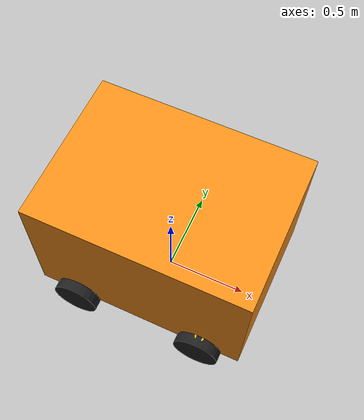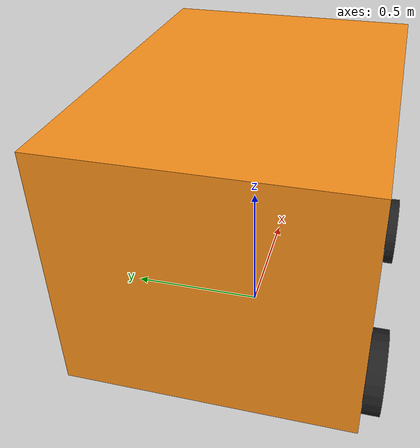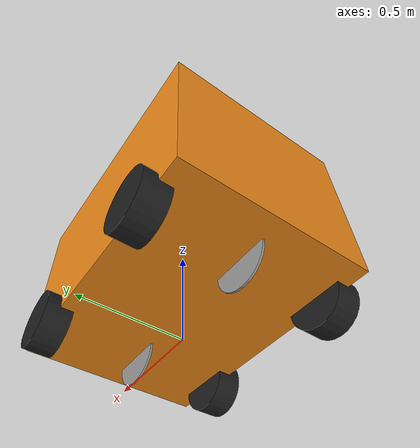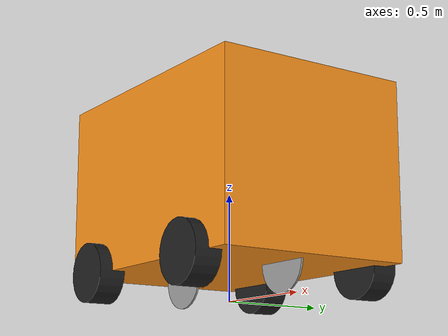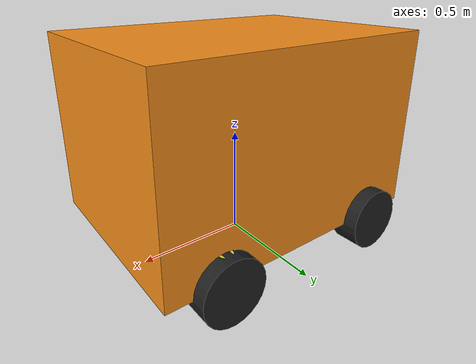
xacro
<?xml version="1.0"?>
<robot xmlns:xacro="http://www.ros.org/wiki/xacro" >
    <xacro:include filename="inertial_macros.xacro"/>
    <xacro:include filename="materials.xacro"/>

    <!-- Constants for robot dimensions -->
    <xacro:property name="PI" value="3.1415926535897931"/>
    <xacro:property name="base_mass" value="8.0" /> <!-- arbitrary value for base mass -->
    <xacro:property name="base_width" value="0.94" />
    <xacro:property name="base_length" value="1.3" />
    <xacro:property name="base_height" value="0.83" />
    <xacro:property name="wheelbase" value="0.8" />
    <xacro:property name="wheel_mass" value="0.34055" /> <!-- arbitrary value for wheel mass -->
    <xacro:property name="wheel_len" value="0.125" />
    <xacro:property name="wheel_radius" value="0.1397" />
    <xacro:property name="steer_mass" value="0.34055" /> <!-- arbitrary value for wheel mass -->
    <xacro:property name="steer_len" value="0.025" />
    <xacro:property name="steer_radius" value="0.03" />

    <!-- Base Link -->
    <link name="base_link" />
    <!-- BASE_FOOTPRINT LINK -->

    <joint name="base_footprint_joint" type="fixed">
        <parent link="base_link"/>
        <child link="base_footprint"/>
        <origin xyz="0 0 0" rpy="0 0 0"/>
    </joint>

    <link name="base_footprint">
    </link>

    <!-- Chassis -->

    <link name="chassis_link">
        <visual>
            <origin xyz="0 0 0" rpy="0 0 0"/>
            <geometry>
                <box size="${base_length} ${base_width} ${base_height}"/>
            </geometry>
            <material name="orange"/>
        </visual>
        <collision>
            <origin xyz="0 0 0" rpy="0 0 0"/>
            <geometry>
                <box size="${base_length} ${base_width} ${base_height}"/>
            </geometry>
        </collision>
        <inertial>
            <origin xyz="0 0 0" rpy="0 0 0"/>
            <mass value="${base_mass}"/>
            <inertia
                ixx="0.000270" ixy="0.0" ixz="0.0"
                iyy="0.000270" iyz="0.0"
                izz="0.000426"/>
        </inertial>
    </link>
    <gazebo reference="chassis_link">
        <material>Gazebo/Orange</material>
    </gazebo>

    <joint name="chassis_joint" type="fixed">
        <parent link="base_link"/>
        <child link="chassis_link"/>
        <origin xyz="0 0 ${base_height/2 + wheel_radius}" rpy="0 0 0"/>
        <axis xyz="0 0 1"/>
        <dynamics damping="0.2"/>
    </joint>

    <!-- rear wheels -->

    <!-- virtual rear wheel -->

    <link name="virtual_rear_wheel">
        <visual>
            <origin xyz="0 0 0" rpy="${PI/2} 0 ${PI/2}"/>
            <geometry>
                <cylinder length="0.01" radius="${wheel_radius}"/>
            </geometry>
            <material name="invisible"/>
        </visual>
        <collision>
            <origin xyz="0 0 0" rpy="${PI/2} 0 ${PI/2}"/>
            <geometry>
                <cylinder length="0.01" radius="${wheel_radius}"/>
            </geometry>
        </collision>
        <inertial>
            <origin xyz="0 0 0" rpy="${PI/2} 0 ${PI/2}"/>
            <mass value="${wheel_mass}"/>
            <inertia
                ixx="0.000270" ixy="0.0" ixz="0.0"
                iyy="0.000270" iyz="0.0"
                izz="0.000426"/>
        </inertial>
    </link>
    <gazebo reference="virtual_rear_wheel">
        <material>Gazebo/GreyTransparent</material>
    </gazebo>

    <joint name="virtual_rear_wheel_joint" type="continuous">
        <parent link="chassis_link"/>
        <child link="virtual_rear_wheel"/>
        <origin xyz="-${wheelbase/2} 0 -${base_height/2}" rpy="0 0 ${PI/2}"/>
        <axis xyz="1 0 0"/>
        <limit effort="100.0" velocity="100.0"/>
        <dynamics damping="0.2"/>
    </joint>

    <!-- rear right wheel -->

    <link name="rear_right_wheel">
        <visual>
            <origin xyz="0 0 0" rpy="${PI/2} 0 ${PI/2}"/>
            <geometry>
                <cylinder length="${wheel_len}" radius="${wheel_radius}"/>
            </geometry>
            <material name="black"/>
        </visual>
        <collision>
            <origin xyz="0 0 0" rpy="${PI/2} 0 ${PI/2}"/>
            <geometry>
                <cylinder length="${wheel_len}" radius="${wheel_radius}"/>
            </geometry>
        </collision>
        <inertial>
            <origin xyz="0 0 0" rpy="${PI/2} 0 ${PI/2}"/>
            <mass value="${wheel_mass}"/>
            <inertia
                ixx="0.000270" ixy="0.0" ixz="0.0"
                iyy="0.000270" iyz="0.0"
                izz="0.000426"/>
        </inertial>
    </link>
    <gazebo reference="rear_right_wheel">
        <material>Gazebo/Blue</material>
    </gazebo>

    <joint name="rear_right_wheel_joint" type="continuous">
        <parent link="chassis_link"/>
        <child link="rear_right_wheel"/>
        <origin xyz="-${wheelbase/2} ${base_width/2} -${base_height/2}" rpy="0 0 ${PI/2}"/>
        <axis xyz="1 0 0"/>
        <limit effort="100.0" velocity="100.0"/>
        <dynamics damping="0.2"/>
        <mimic joint="virtual_rear_wheel_joint" multiplier="1.0" offset="0.0"/>
    </joint>

    <!-- rear left wheel -->
    <link name="rear_left_wheel">
        <visual>
            <origin xyz="0 0 0" rpy="${PI/2} 0 ${PI/2}"/>
            <geometry>
                <cylinder length="${wheel_len}" radius="${wheel_radius}"/>
            </geometry>
            <material name="black"/>
        </visual>
        <collision>
            <origin xyz="0 0 0" rpy="${PI/2} 0 ${PI/2}"/>
            <geometry>
                <cylinder length="${wheel_len}" radius="${wheel_radius}"/>
            </geometry>
        </collision>
        <inertial>
            <origin xyz="0 0 0" rpy="${PI/2} 0 ${PI/2}"/>
            <mass value="${wheel_mass}"/>
            <inertia
            ixx="0.000270" ixy="0.0" ixz="0.0"
            iyy="0.000270" iyz="0.0"
            izz="0.000426"/>
        </inertial>
    </link>
    <gazebo reference="rear_left_wheel">
        <material>Gazebo/Blue</material>
    </gazebo>

    <joint name="rear_left_wheel_joint" type="continuous">
        <parent link="chassis_link" />
        <child link="rear_left_wheel" />
        <origin xyz="-${wheelbase/2} -${base_width/2} -${base_height/2}" rpy="0 0 ${PI/2}"/>
        <axis xyz="1 0 0"/>
        <limit effort="100.0" velocity="100.0"/>
        <dynamics damping="0.2"/>
        <mimic joint="virtual_rear_wheel_joint" multiplier="1.0" offset="0.0"/>
    </joint>

    <!-- front wheels -->

    <!-- virtual front wheel -->

    <link name="virtual_front_steer">
        <visual>
        <origin xyz="0 0 0" rpy="${PI/2} 0 ${PI/2}"/>
        <geometry>
            <cylinder length="0.01" radius="${wheel_radius}"/>
        </geometry>
        <material name="invisible"/>
        </visual>
        <collision>
                <origin xyz="0 0 0" rpy="${PI/2} 0 ${PI/2}"/>
                <geometry>
                    <cylinder length="0.01" radius="${wheel_radius}"/>
                </geometry>
        </collision>
        <inertial>
                <origin xyz="0 0 0" rpy="${PI/2} 0 ${PI/2}"/>
                <mass value="${wheel_mass}"/>
                <inertia
                    ixx="0.000270" ixy="0.0" ixz="0.0"
                    iyy="0.000270" iyz="0.0"
                    izz="0.000426"/>
        </inertial>
    </link>
    <gazebo reference="virtual_front_steer">
        <material>Gazebo/GreyTransparent</material>
    </gazebo>

    <joint name="virtual_front_steer_joint" type="revolute">
        <parent link="chassis_link"/>
        <child link="virtual_front_steer"/>
        <origin xyz="${wheelbase/2} 0 -${base_height/2}" rpy="0 0 ${PI/2}"/>
        <axis xyz="0 0 1"/>
        <limit lower="-0.4" upper="0.4" effort="100.0" velocity="0.0"/>
        <dynamics damping="0.2"/>
    </joint>

    <!-- front right wheel -->
    <link name="front_right_steer">
        <visual>
            <origin xyz="0 0 0" rpy="${PI/2} 0 ${PI/2}"/>
            <geometry>
                <cylinder length="${steer_len}" radius="${steer_radius}"/>
            </geometry>
            <material name="yellow"/>
        </visual>
        <collision>
            <origin xyz="0 0 0" rpy="${PI/2} 0 ${PI/2}"/>
            <geometry>
                <cylinder length="${steer_len}" radius="${steer_radius}"/>
            </geometry>
        </collision>
        <inertial>
            <origin xyz="0 0 0" rpy="${PI/2} 0 ${PI/2}"/>
            <mass value="${steer_mass}"/>
            <inertia
                ixx="0.000270" ixy="0.0" ixz="0.0"
                iyy="0.000270" iyz="0.0"
                izz="0.000426"/>
        </inertial>
    </link>
    <gazebo reference="front_right_steer">
        <material>Gazebo/Yellow</material>
    </gazebo>

    <joint name="front_right_steer_joint" type="revolute">
        <parent link="chassis_link" />
        <child link="front_right_steer" />
        <origin xyz="${wheelbase/2} ${base_width/2} -${base_height/2 -wheel_len}" rpy="0 ${PI/2} 0"/>
        <axis xyz="-1 0 0"/>
        <limit lower="-0.4" upper="0.4" effort="100.0" velocity="0.0"/>
        <dynamics damping="0.2"/>
        <mimic joint="virtual_front_steer_joint" multiplier="1.0" offset="0.0"/>
    </joint>

    <link name="front_right_wheel">
        <visual>
            <origin xyz="0 0 0" rpy="${PI/2} 0 ${PI/2}"/>
            <geometry>
                <cylinder length="${wheel_len}" radius="${wheel_radius}"/>
            </geometry>
            <material name="black"/>
        </visual>
        <collision>
            <origin xyz="0 0 0" rpy="${PI/2} 0 ${PI/2}"/>
            <geometry>
                <cylinder length="${wheel_len}" radius="${wheel_radius}"/>
            </geometry>
        </collision>
        <inertial>
            <origin xyz="0 0 0" rpy="${PI/2} 0 ${PI/2}"/>
            <mass value="${wheel_mass}"/>
            <inertia
                ixx="0.000270" ixy="0.0" ixz="0.0"
                iyy="0.000270" iyz="0.0"
                izz="0.000426"/>
        </inertial>
    </link>
    <gazebo reference="front_right_wheel">
        <material>Gazebo/Blue</material>
    </gazebo>

    <joint name="front_right_wheel_joint" type="continuous">
        <parent link="front_right_steer" />
        <child link="front_right_wheel" />
        <origin xyz="${wheel_len} 0 0" rpy="0 0 ${PI/2}"/>
        <axis xyz="1 0 0"/>
        <mimic joint="virtual_rear_wheel_joint" multiplier="1.0" offset="0.0"/>
    </joint>

    <!-- front left steering -->
    <link name="front_left_steer">
        <visual>
            <origin xyz="0 0 0" rpy="${PI/2} 0 ${PI/2}"/>
            <geometry>
                <cylinder length="${steer_len}" radius="${steer_radius}"/>
            </geometry>
            <material name="yellow"/>
        </visual>
        <collision>
            <origin xyz="0 0 0" rpy="${PI/2} 0 ${PI/2}"/>
            <geometry>
                <cylinder length="${steer_len}" radius="${steer_radius}"/>
            </geometry>
        </collision>
        <inertial>
            <origin xyz="0 0 0" rpy="${PI/2} 0 ${PI/2}"/>
            <mass value="${steer_mass}"/>
            <inertia
                ixx="0.000270" ixy="0.0" ixz="0.0"
                iyy="0.000270" iyz="0.0"
                izz="0.000426"/>
        </inertial>

    </link>
    <gazebo reference="front_left_steer">
        <material>Gazebo/Yellow</material>
    </gazebo>

    <joint name="front_left_steer_joint" type="revolute">
        <parent link="chassis_link" />
        <child link="front_left_steer" />
        <origin xyz="${wheelbase/2} -${base_width/2} -${base_height/2 - wheel_len}" rpy="0 ${PI/2} 0"/>
        <axis xyz="-1 0 0"/>
        <limit lower="-0.4" upper="0.4" effort="100.0" velocity="0.0"/>
        <dynamics damping="0.2"/>
        <mimic joint="virtual_front_steer_joint" multiplier="1.0" offset="0.0"/>
    </joint>

    <link name="front_left_wheel">
        <visual>
            <origin xyz="0 0 0" rpy="${PI/2} 0 ${PI/2}"/>
            <geometry>
                <cylinder length="${wheel_len}" radius="${wheel_radius}"/>
            </geometry>
            <material name="black"/>
        </visual>
        <collision>
            <origin xyz="0 0 0" rpy="${PI/2} 0 ${PI/2}"/>
            <geometry>
                <cylinder length="${wheel_len}" radius="${wheel_radius}"/>
            </geometry>
        </collision>
        <inertial>
            <origin xyz="0 0 0" rpy="${PI/2} 0 ${PI/2}"/>
            <mass value="${wheel_mass}"/>
            <inertia
                ixx="0.000270" ixy="0.0" ixz="0.0"
                iyy="0.000270" iyz="0.0"
                izz="0.000426"/>
        </inertial>

    </link>
    <gazebo reference="front_left_wheel">
        <material>Gazebo/Blue</material>
    </gazebo>

    <joint name="front_left_wheel_joint" type="continuous">
        <parent link="front_left_steer" />
        <child link="front_left_wheel" />
        <origin xyz="${wheel_len} 0 0" rpy="0 0 ${PI/2}"/>
        <axis xyz="1 0 0"/>
        <mimic joint="virtual_rear_wheel_joint" multiplier="1.0" offset="0.0"/>
    </joint>

    <transmission name="virtual_front_steer_joint_trans">
        <type>transmission_interface/SimpleTransmission</type>
        <joint name="virtual_front_steer_joint">
            <hardwareInterface>hardware_interface/VelocityJointInterface</hardwareInterface>
            <hardwareInterface>hardware_interface/JointStateInterface</hardwareInterface>
            <hardwareInterface>hardware_interface/PositionJointInterface</hardwareInterface>
        </joint>
        <actuator name="virtual_front_steer_joint_actuator">
            <mechanicalReduction>7</mechanicalReduction>
            <hardwareInterface>VelocityJointInterface</hardwareInterface>
        </actuator>
    </transmission>

    <transmission name="front_right_steer_joint_trans" >
        <type>transmission_interface/SimpleTransmission</type>
        <actuator name="front_right_steer_joint_motor"/>
        <joint name="front_right_steer_joint">
            <hardwareInterface>EffortJointInterface</hardwareInterface>
        </joint>
        <mechanicalReduction>1</mechanicalReduction>
        <motorTorqueConstant>1</motorTorqueConstant>
    </transmission>
    <transmission name="front_left_steer_joint_trans" >
        <type>transmission_interface/SimpleTransmission</type>
        <actuator name="front_left_steer_joint_motor"/>
        <joint name="front_left_steer_joint">
            <hardwareInterface>EffortJointInterface</hardwareInterface>
        </joint>
        <mechanicalReduction>1</mechanicalReduction>
        <motorTorqueConstant>1</motorTorqueConstant>
    </transmission>
    <transmission name="front_left_wheel_joint_trans" >
        <type>transmission_interface/SimpleTransmission</type>
        <actuator name="front_left_wheel_joint_motor"/>
        <joint name="front_left_wheel_joint">
            <hardwareInterface>EffortJointInterface</hardwareInterface>
        </joint>
        <mechanicalReduction>1</mechanicalReduction>
        <motorTorqueConstant>1</motorTorqueConstant>
    </transmission>

    <transmission name="front_right_wheel_joint_trans" >
        <type>transmission_interface/SimpleTransmission</type>
        <actuator name="front_right_wheel_joint_motor"/>
        <joint name="front_right_wheel_joint">
            <hardwareInterface>EffortJointInterface</hardwareInterface>
        </joint>
        <mechanicalReduction>1</mechanicalReduction>
        <motorTorqueConstant>1</motorTorqueConstant>
    </transmission>

    <transmission name="rear_left_wheel_joint_trans" >
        <type>transmission_interface/SimpleTransmission</type>
        <actuator name="rear_left_wheel_joint_motor"/>
        <joint name="rear_left_wheel_joint">
            <hardwareInterface>EffortJointInterface</hardwareInterface>
        </joint>
        <mechanicalReduction>1</mechanicalReduction>
        <motorTorqueConstant>1</motorTorqueConstant>
    </transmission>
    <transmission name="rear_right_wheel_joint_trans" >
        <type>transmission_interface/SimpleTransmission</type>
        <actuator name="rear_right_wheel_joint_motor"/>
        <joint name="rear_right_wheel_joint">
            <hardwareInterface>EffortJointInterface</hardwareInterface>
        </joint>
        <mechanicalReduction>1</mechanicalReduction>
        <motorTorqueConstant>1</motorTorqueConstant>
    </transmission>

    <!-- Transmission is important to link the joints and the controller -->

    <transmission name="virtual_rear_wheel_trans">
        <type>transmission_interface/SimpleTransmission</type>
        <joint name="virtual_rear_wheel">
            <hardwareInterface>hardware_interface/VelocityJointInterface</hardwareInterface>
            <hardwareInterface>hardware_interface/JointStateInterface</hardwareInterface>
            <hardwareInterface>hardware_interface/PositionJointInterface</hardwareInterface>
        </joint>
        <actuator name="virtual_rear_wheel_actuator">
            <mechanicalReduction>7</mechanicalReduction>
            <hardwareInterface>VelocityJointInterface</hardwareInterface>
        </actuator>
    </transmission>

</robot>
